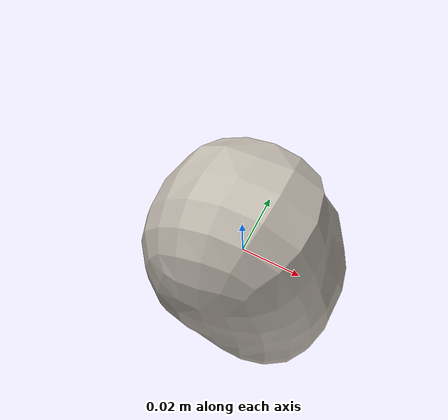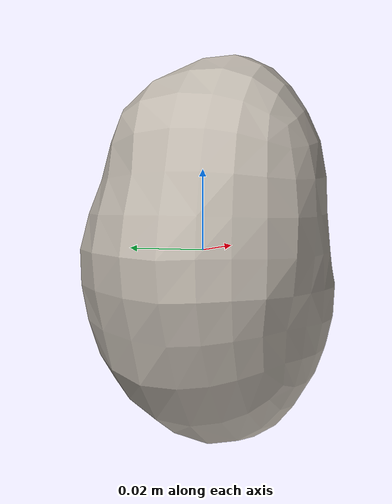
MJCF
<mujoco model="Potato_1">
  <compiler autolimits="true" boundmass="0.01" angle="radian"/>
  <default>
    <default class="/">
      <default class="__VISUAL_MJT__">
        <geom contype="0" conaffinity="0" group="0"/>
      </default>
      <default class="__STRUCTURAL_MJT__">
        <geom contype="8" conaffinity="15" group="4" friction="0.90000000000000002 0.90000000000000002 0.001" solref="0.025000000000000001 1" solimp="0.998 0.998 0.001"/>
      </default>
      <default class="__DYNAMIC_MJT__">
        <geom contype="1" conaffinity="15" group="4" friction="0.90000000000000002 0.90000000000000002 0.001" solref="0.025000000000000001 1" solimp="0.998 0.998 0.001"/>
      </default>
    </default>
  </default>
  <asset>
    <texture name="Potato1_Mat1" type="2d" file="Potato1_AlbedoTransparency.png"/>
    <material name="material_Potato1_Mat1" class="/" texture="Potato1_Mat1" specular="0.5" shininess="0.5" rgba="1 1 1 1"/>
    <mesh name="Potato_1_potato_a1" class="/" file="Potato_1_potato_a1/Potato_1_potato_a1.obj" scale="1 1 1"/>
  </asset>
  <worldbody>
    <body name="Potato_1">
      <joint name="Potato_1_free" class="/" type="free" pos="0 0 0" axis="0 0 1" stiffness="0" range="0 0" armature="0" damping="0.10000000000000001" frictionloss="0"/>
      <body name="Potato_1_potato_a1" pos="0.0015200000000000001 0.00038000000000000002 -0.00149" quat="1 0 0 0">
        <geom name="Potato_1_potato_a1" class="__VISUAL_MJT__" type="mesh" material="material_Potato1_Mat1" shellinertia="true" mesh="Potato_1_potato_a1"/>
        <geom name="Potato_1_PrimitiveCollider_0" class="__DYNAMIC_MJT__" type="capsule" size="0.032944232225418091 0.01759803295135498" rgba="0 1 0 1" pos="0.0015185177326202393 -0.00038397253956645727 0.0014942002017050982" quat="1.4751396609986736e-06 0.99999999999891198 0 0"/>
      </body>
    </body>
  </worldbody>
</mujoco>
